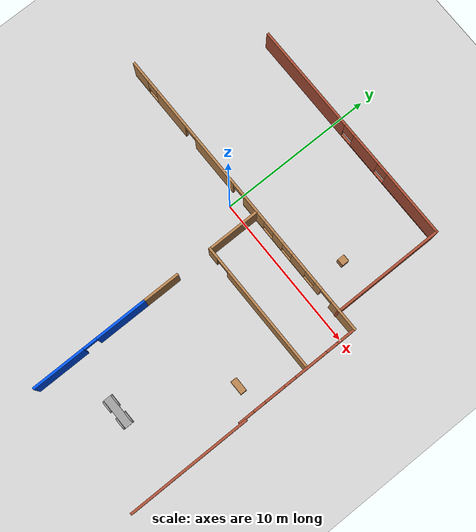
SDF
<sdf version="1.6">
 <world name="default">
  <model name="ground_plane">
   <pose>0 0 0.4 0 -0 0</pose>
   <static>1</static>
   <link name="link">
    <collision name="collision">
     <geometry><plane><normal>0 0 1</normal><size>100 100</size></plane></geometry>
     <surface>
      <contact><collide_bitmask>65535</collide_bitmask></contact>
      <friction><ode><mu>100</mu><mu2>50</mu2></ode></friction>
     </surface>
    </collision>
    <visual name="visual">
     <cast_shadows>0</cast_shadows>
     <geometry><plane><normal>0 0 1</normal><size>100 100</size></plane></geometry>
     <material>
      <script><uri>file://media/materials/scripts/gazebo.material</uri><name>Gazebo/Grey</name></script>
     </material>
    </visual>
   </link>
  </model>
  <model name="Building">
   <pose>-2.11328 -3.59888 0 0 -0 0</pose>
   <link name="Wall_19">
    <collision name="Wall_19_Collision">
     <geometry><box><size>3.5 0.15 2.5</size></box></geometry>
     <pose>0 0 1.25 0 -0 0</pose>
    </collision>
    <visual name="Wall_19_Visual">
     <pose>0 0 1.25 0 -0 0</pose>
     <geometry><box><size>3.5 0.15 2.5</size></box></geometry>
     <material>
      <script><uri>file://media/materials/scripts/gazebo.material</uri><name>Gazebo/Wood</name></script>
      <ambient>1 1 1 1</ambient>
     </material>
     <meta><layer>0</layer></meta>
    </visual>
    <pose>3.70447 2.60682 0 0 0 -1.5708</pose>
   </link>
   <link name="Wall_20">
    <pose>7.87947 0.931819 0 0 -0 0</pose>
    <visual name="Wall_20_Visual_0">
     <pose>-3.86745 0 1.25 0 -0 0</pose>
     <geometry><box><size>0.765092 0.15 2.5</size></box></geometry>
     <material>
      <script><uri>file://media/materials/scripts/gazebo.material</uri><name>Gazebo/Wood</name></script>
      <ambient>1 1 1 1</ambient>
     </material>
     <meta><layer>0</layer></meta>
    </visual>
    <collision name="Wall_20_Collision_0">
     <geometry><box><size>0.765092 0.15 2.5</size></box></geometry>
     <pose>-3.86745 0 1.25 0 -0 0</pose>
    </collision>
    <visual name="Wall_20_Visual_1">
     <pose>0.832546 0 1.25 0 -0 0</pose>
     <geometry><box><size>6.83491 0.15 2.5</size></box></geometry>
     <material>
      <script><uri>file://media/materials/scripts/gazebo.material</uri><name>Gazebo/Wood</name></script>
      <ambient>1 1 1 1</ambient>
     </material>
     <meta><layer>0</layer></meta>
    </visual>
    <collision name="Wall_20_Collision_1">
     <geometry><box><size>6.83491 0.15 2.5</size></box></geometry>
     <pose>0.832546 0 1.25 0 -0 0</pose>
    </collision>
    <visual name="Wall_20_Visual_2">
     <pose>-3.03491 0 2.25 0 -0 0</pose>
     <geometry><box><size>0.9 0.15 0.5</size></box></geometry>
     <material>
      <script><uri>file://media/materials/scripts/gazebo.material</uri><name>Gazebo/Wood</name></script>
      <ambient>1 1 1 1</ambient>
     </material>
     <meta><layer>0</layer></meta>
    </visual>
    <collision name="Wall_20_Collision_2">
     <geometry><box><size>0.9 0.15 0.5</size></box></geometry>
     <pose>-3.03491 0 2.25 0 -0 0</pose>
    </collision>
   </link>
   <link name="Wall_22">
    <collision name="Wall_22_Collision">
     <geometry><box><size>2.5 0.15 2.5</size></box></geometry>
     <pose>0 0 1.25 0 -0 0</pose>
    </collision>
    <visual name="Wall_22_Visual">
     <pose>0 0 1.25 0 -0 0</pose>
     <geometry><box><size>2.5 0.15 2.5</size></box></geometry>
     <material>
      <script><uri>file://media/materials/scripts/gazebo.material</uri><name>Gazebo/Wood</name></script>
      <ambient>1 1 1 1</ambient>
     </material>
     <meta><layer>0</layer></meta>
    </visual>
    <pose>3.68886 -2.58973 0 0 -0 1.5708</pose>
   </link>
   <link name="Wall_25">
    <pose>3.475 11.3647 0 0 -0 0</pose>
    <visual name="Wall_25_Visual_0">
     <pose>-4.00983 0 1.25 0 -0 0</pose>
     <geometry><box><size>6.98034 0.15 2.5</size></box></geometry>
     <material>
      <script><uri>file://media/materials/scripts/gazebo.material</uri><name>Gazebo/Bricks</name></script>
      <ambient>0 0.333333 1 1</ambient>
     </material>
     <meta><layer>0</layer></meta>
    </visual>
    <collision name="Wall_25_Collision_0">
     <geometry><box><size>6.98034 0.15 2.5</size></box></geometry>
     <pose>-4.00983 0 1.25 0 -0 0</pose>
    </collision>
    <visual name="Wall_25_Visual_1">
     <pose>3.49017 0 0.25 0 -0 0</pose>
     <geometry><box><size>8.01966 0.15 0.5</size></box></geometry>
     <material>
      <script><uri>file://media/materials/scripts/gazebo.material</uri><name>Gazebo/Bricks</name></script>
      <ambient>0 0.333333 1 1</ambient>
     </material>
     <meta><layer>0</layer></meta>
    </visual>
    <collision name="Wall_25_Collision_1">
     <geometry><box><size>8.01966 0.15 0.5</size></box></geometry>
     <pose>3.49017 0 0.25 0 -0 0</pose>
    </collision>
    <visual name="Wall_25_Visual_2">
     <pose>1.32873 0 1.5 0 -0 0</pose>
     <geometry><box><size>2.09676 0.15 2</size></box></geometry>
     <material>
      <script><uri>file://media/materials/scripts/gazebo.material</uri><name>Gazebo/Bricks</name></script>
      <ambient>0 0.333333 1 1</ambient>
     </material>
     <meta><layer>0</layer></meta>
    </visual>
    <collision name="Wall_25_Collision_2">
     <geometry><box><size>2.09676 0.15 2</size></box></geometry>
     <pose>1.32873 0 1.5 0 -0 0</pose>
    </collision>
    <visual name="Wall_25_Visual_3">
     <pose>5.33856 0 1.5 0 -0 0</pose>
     <geometry><box><size>4.32289 0.15 2</size></box></geometry>
     <material>
      <script><uri>file://media/materials/scripts/gazebo.material</uri><name>Gazebo/Bricks</name></script>
      <ambient>0 0.333333 1 1</ambient>
     </material>
     <meta><layer>0</layer></meta>
    </visual>
    <collision name="Wall_25_Collision_3">
     <geometry><box><size>4.32289 0.15 2</size></box></geometry>
     <pose>5.33856 0 1.5 0 -0 0</pose>
    </collision>
    <visual name="Wall_25_Visual_4">
     <pose>-0.119655 0 1.9 0 -0 0</pose>
     <geometry><box><size>0.8 0.15 1.2</size></box></geometry>
     <material>
      <script><uri>file://media/materials/scripts/gazebo.material</uri><name>Gazebo/Bricks</name></script>
      <ambient>0 0.333333 1 1</ambient>
     </material>
     <meta><layer>0</layer></meta>
    </visual>
    <collision name="Wall_25_Collision_4">
     <geometry><box><size>0.8 0.15 1.2</size></box></geometry>
     <pose>-0.119655 0 1.9 0 -0 0</pose>
    </collision>
    <visual name="Wall_25_Visual_5">
     <pose>2.77711 0 1.9 0 -0 0</pose>
     <geometry><box><size>0.8 0.15 1.2</size></box></geometry>
     <material>
      <script><uri>file://media/materials/scripts/gazebo.material</uri><name>Gazebo/Bricks</name></script>
      <ambient>0 0.333333 1 1</ambient>
     </material>
     <meta><layer>0</layer></meta>
    </visual>
    <collision name="Wall_25_Collision_5">
     <geometry><box><size>0.8 0.15 1.2</size></box></geometry>
     <pose>2.77711 0 1.9 0 -0 0</pose>
    </collision>
   </link>
   <link name="Wall_30">
    <collision name="Wall_30_Collision">
     <geometry><box><size>7.25 0.15 2.5</size></box></geometry>
     <pose>0 0 1.25 0 -0 0</pose>
    </collision>
    <visual name="Wall_30_Visual">
     <pose>0 0 1.25 0 -0 0</pose>
     <geometry><box><size>7.25 0.15 2.5</size></box></geometry>
     <material>
      <script><uri>file://media/materials/scripts/gazebo.material</uri><name>Gazebo/Bricks</name></script>
      <ambient>0 0.333333 1 1</ambient>
     </material>
     <meta><layer>0</layer></meta>
    </visual>
    <pose>10.9 7.81472 0 0 0 -1.5708</pose>
   </link>
   <link name="Wall_43">
    <collision name="Wall_43_Collision">
     <geometry><box><size>8 0.15 2.5</size></box></geometry>
     <pose>0 0 1.25 0 -0 0</pose>
    </collision>
    <visual name="Wall_43_Visual">
     <pose>0 0 1.25 0 -0 0</pose>
     <geometry><box><size>8 0.15 2.5</size></box></geometry>
     <material>
      <script><uri>file://media/materials/scripts/gazebo.material</uri><name>Gazebo/Bricks</name></script>
      <ambient>0 0.333333 1 1</ambient>
     </material>
     <meta><layer>0</layer></meta>
    </visual>
    <pose>12.3 -7.41028 0 0 -0 1.5708</pose>
   </link>
   <link name="Wall_49">
    <pose>3.68886 -7.56473 0 0 0 -1.5708</pose>
    <visual name="Wall_49_Visual_0">
     <pose>-2.18717 0 1.25 0 -0 0</pose>
     <geometry><box><size>3.37566 0.15 2.5</size></box></geometry>
     <material>
      <script><uri>file://media/materials/scripts/gazebo.material</uri><name>Gazebo/Grey</name></script>
      <ambient>0 0.333333 1 1</ambient>
     </material>
     <meta><layer>0</layer></meta>
    </visual>
    <collision name="Wall_49_Collision_0">
     <geometry><box><size>3.37566 0.15 2.5</size></box></geometry>
     <pose>-2.18717 0 1.25 0 -0 0</pose>
    </collision>
    <visual name="Wall_49_Visual_1">
     <pose>2.13783 0 1.25 0 -0 0</pose>
     <geometry><box><size>3.47434 0.15 2.5</size></box></geometry>
     <material>
      <script><uri>file://media/materials/scripts/gazebo.material</uri><name>Gazebo/Grey</name></script>
      <ambient>0 0.333333 1 1</ambient>
     </material>
     <meta><layer>0</layer></meta>
    </visual>
    <collision name="Wall_49_Collision_1">
     <geometry><box><size>3.47434 0.15 2.5</size></box></geometry>
     <pose>2.13783 0 1.25 0 -0 0</pose>
    </collision>
    <visual name="Wall_49_Visual_2">
     <pose>-0.049336 0 2.25 0 -0 0</pose>
     <geometry><box><size>0.9 0.15 0.5</size></box></geometry>
     <material>
      <script><uri>file://media/materials/scripts/gazebo.material</uri><name>Gazebo/Grey</name></script>
      <ambient>0 0.333333 1 1</ambient>
     </material>
     <meta><layer>0</layer></meta>
    </visual>
    <collision name="Wall_49_Collision_2">
     <geometry><box><size>0.9 0.15 0.5</size></box></geometry>
     <pose>-0.049336 0 2.25 0 -0 0</pose>
    </collision>
   </link>
   <link name="Wall_6">
    <pose>12.2055 0.24905 0 0 -0 1.5708</pose>
    <visual name="Wall_6_Visual_0">
     <pose>-3.60603 0 1.25 0 -0 0</pose>
     <geometry><box><size>1.03795 0.15 2.5</size></box></geometry>
     <material>
      <script><uri>file://media/materials/scripts/gazebo.material</uri><name>Gazebo/Bricks</name></script>
      <ambient>0 0.333333 1 1</ambient>
     </material>
     <meta><layer>0</layer></meta>
    </visual>
    <collision name="Wall_6_Collision_0">
     <geometry><box><size>1.03795 0.15 2.5</size></box></geometry>
     <pose>-3.60603 0 1.25 0 -0 0</pose>
    </collision>
    <visual name="Wall_6_Visual_1">
     <pose>0.518974 0 0.25 0 -0 0</pose>
     <geometry><box><size>7.21205 0.15 0.5</size></box></geometry>
     <material>
      <script><uri>file://media/materials/scripts/gazebo.material</uri><name>Gazebo/Bricks</name></script>
      <ambient>0 0.333333 1 1</ambient>
     </material>
     <meta><layer>0</layer></meta>
    </visual>
    <collision name="Wall_6_Collision_1">
     <geometry><box><size>7.21205 0.15 0.5</size></box></geometry>
     <pose>0.518974 0 0.25 0 -0 0</pose>
    </collision>
    <visual name="Wall_6_Visual_2">
     <pose>-1.61031 0 1.5 0 -0 0</pose>
     <geometry><box><size>1.35348 0.15 2</size></box></geometry>
     <material>
      <script><uri>file://media/materials/scripts/gazebo.material</uri><name>Gazebo/Bricks</name></script>
      <ambient>0 0.333333 1 1</ambient>
     </material>
     <meta><layer>0</layer></meta>
    </visual>
    <collision name="Wall_6_Collision_2">
     <geometry><box><size>1.35348 0.15 2</size></box></geometry>
     <pose>-1.61031 0 1.5 0 -0 0</pose>
    </collision>
    <visual name="Wall_6_Visual_3">
     <pose>0.958474 0 1.5 0 -0 0</pose>
     <geometry><box><size>2.1841 0.15 2</size></box></geometry>
     <material>
      <script><uri>file://media/materials/scripts/gazebo.material</uri><name>Gazebo/Bricks</name></script>
      <ambient>0 0.333333 1 1</ambient>
     </material>
     <meta><layer>0</layer></meta>
    </visual>
    <collision name="Wall_6_Collision_3">
     <geometry><box><size>2.1841 0.15 2</size></box></geometry>
     <pose>0.958474 0 1.5 0 -0 0</pose>
    </collision>
    <visual name="Wall_6_Visual_4">
     <pose>3.48776 0 1.5 0 -0 0</pose>
     <geometry><box><size>1.27448 0.15 2</size></box></geometry>
     <material>
      <script><uri>file://media/materials/scripts/gazebo.material</uri><name>Gazebo/Bricks</name></script>
      <ambient>0 0.333333 1 1</ambient>
     </material>
     <meta><layer>0</layer></meta>
    </visual>
    <collision name="Wall_6_Collision_4">
     <geometry><box><size>1.27448 0.15 2</size></box></geometry>
     <pose>3.48776 0 1.5 0 -0 0</pose>
    </collision>
    <visual name="Wall_6_Visual_5">
     <pose>-2.68705 0 1.9 0 -0 0</pose>
     <geometry><box><size>0.8 0.15 1.2</size></box></geometry>
     <material>
      <script><uri>file://media/materials/scripts/gazebo.material</uri><name>Gazebo/Bricks</name></script>
      <ambient>0 0.333333 1 1</ambient>
     </material>
     <meta><layer>0</layer></meta>
    </visual>
    <collision name="Wall_6_Collision_5">
     <geometry><box><size>0.8 0.15 1.2</size></box></geometry>
     <pose>-2.68705 0 1.9 0 -0 0</pose>
    </collision>
    <visual name="Wall_6_Visual_6">
     <pose>-0.533577 0 1.9 0 -0 0</pose>
     <geometry><box><size>0.8 0.15 1.2</size></box></geometry>
     <material>
      <script><uri>file://media/materials/scripts/gazebo.material</uri><name>Gazebo/Bricks</name></script>
      <ambient>0 0.333333 1 1</ambient>
     </material>
     <meta><layer>0</layer></meta>
    </visual>
    <collision name="Wall_6_Collision_6">
     <geometry><box><size>0.8 0.15 1.2</size></box></geometry>
     <pose>-0.533577 0 1.9 0 -0 0</pose>
    </collision>
    <visual name="Wall_6_Visual_7">
     <pose>2.45052 0 1.9 0 -0 0</pose>
     <geometry><box><size>0.8 0.15 1.2</size></box></geometry>
     <material>
      <script><uri>file://media/materials/scripts/gazebo.material</uri><name>Gazebo/Bricks</name></script>
      <ambient>0 0.333333 1 1</ambient>
     </material>
     <meta><layer>0</layer></meta>
    </visual>
    <collision name="Wall_6_Collision_7">
     <geometry><box><size>0.8 0.15 1.2</size></box></geometry>
     <pose>2.45052 0 1.9 0 -0 0</pose>
    </collision>
   </link>
   <link name="Wall_7">
    <pose>2.40547 4.29905 0 0 -0 3.14159</pose>
    <visual name="Wall_7_Visual_0">
     <pose>-8.86526 0 1.25 0 -0 0</pose>
     <geometry><box><size>2.01947 0.15 2.5</size></box></geometry>
     <material>
      <script><uri>file://media/materials/scripts/gazebo.material</uri><name>Gazebo/Wood</name></script>
      <ambient>1 1 1 1</ambient>
     </material>
     <meta><layer>0</layer></meta>
    </visual>
    <collision name="Wall_7_Collision_0">
     <geometry><box><size>2.01947 0.15 2.5</size></box></geometry>
     <pose>-8.86526 0 1.25 0 -0 0</pose>
    </collision>
    <visual name="Wall_7_Visual_1">
     <pose>-6.697 0 1.25 0 -0 0</pose>
     <geometry><box><size>0.517053 0.15 2.5</size></box></geometry>
     <material>
      <script><uri>file://media/materials/scripts/gazebo.material</uri><name>Gazebo/Wood</name></script>
      <ambient>1 1 1 1</ambient>
     </material>
     <meta><layer>0</layer></meta>
    </visual>
    <collision name="Wall_7_Collision_1">
     <geometry><box><size>0.517053 0.15 2.5</size></box></geometry>
     <pose>-6.697 0 1.25 0 -0 0</pose>
    </collision>
    <visual name="Wall_7_Visual_2">
     <pose>2.47082 0 1.25 0 -0 0</pose>
     <geometry><box><size>3.43771 0.15 2.5</size></box></geometry>
     <material>
      <script><uri>file://media/materials/scripts/gazebo.material</uri><name>Gazebo/Wood</name></script>
      <ambient>1 1 1 1</ambient>
     </material>
     <meta><layer>0</layer></meta>
    </visual>
    <collision name="Wall_7_Collision_2">
     <geometry><box><size>3.43771 0.15 2.5</size></box></geometry>
     <pose>2.47082 0 1.25 0 -0 0</pose>
    </collision>
    <visual name="Wall_7_Visual_3">
     <pose>6.40131 0 1.25 0 -0 0</pose>
     <geometry><box><size>2.62326 0.15 2.5</size></box></geometry>
     <material>
      <script><uri>file://media/materials/scripts/gazebo.material</uri><name>Gazebo/Wood</name></script>
      <ambient>1 1 1 1</ambient>
     </material>
     <meta><layer>0</layer></meta>
    </visual>
    <collision name="Wall_7_Collision_3">
     <geometry><box><size>2.62326 0.15 2.5</size></box></geometry>
     <pose>6.40131 0 1.25 0 -0 0</pose>
    </collision>
    <visual name="Wall_7_Visual_4">
     <pose>-3.29325 0 0.25 0 -0 0</pose>
     <geometry><box><size>6.29044 0.15 0.5</size></box></geometry>
     <material>
      <script><uri>file://media/materials/scripts/gazebo.material</uri><name>Gazebo/Wood</name></script>
      <ambient>1 1 1 1</ambient>
     </material>
     <meta><layer>0</layer></meta>
    </visual>
    <collision name="Wall_7_Collision_4">
     <geometry><box><size>6.29044 0.15 0.5</size></box></geometry>
     <pose>-3.29325 0 0.25 0 -0 0</pose>
    </collision>
    <visual name="Wall_7_Visual_5">
     <pose>8.79397 0 0.25 0 -0 0</pose>
     <geometry><box><size>2.16206 0.15 0.5</size></box></geometry>
     <material>
      <script><uri>file://media/materials/scripts/gazebo.material</uri><name>Gazebo/Wood</name></script>
      <ambient>1 1 1 1</ambient>
     </material>
     <meta><layer>0</layer></meta>
    </visual>
    <collision name="Wall_7_Collision_5">
     <geometry><box><size>2.16206 0.15 0.5</size></box></geometry>
     <pose>8.79397 0 0.25 0 -0 0</pose>
    </collision>
    <visual name="Wall_7_Visual_6">
     <pose>-5.03864 0 1.5 0 -0 0</pose>
     <geometry><box><size>1.19966 0.15 2</size></box></geometry>
     <material>
      <script><uri>file://media/materials/scripts/gazebo.material</uri><name>Gazebo/Wood</name></script>
      <ambient>1 1 1 1</ambient>
     </material>
     <meta><layer>0</layer></meta>
    </visual>
    <collision name="Wall_7_Collision_6">
     <geometry><box><size>1.19966 0.15 2</size></box></geometry>
     <pose>-5.03864 0 1.5 0 -0 0</pose>
    </collision>
    <visual name="Wall_7_Visual_7">
     <pose>-3.22357 0 1.5 0 -0 0</pose>
     <geometry><box><size>0.830489 0.15 2</size></box></geometry>
     <material>
      <script><uri>file://media/materials/scripts/gazebo.material</uri><name>Gazebo/Wood</name></script>
      <ambient>1 1 1 1</ambient>
     </material>
     <meta><layer>0</layer></meta>
    </visual>
    <collision name="Wall_7_Collision_7">
     <geometry><box><size>0.830489 0.15 2</size></box></geometry>
     <pose>-3.22357 0 1.5 0 -0 0</pose>
    </collision>
    <visual name="Wall_7_Visual_8">
     <pose>-1.07818 0 1.5 0 -0 0</pose>
     <geometry><box><size>1.86029 0.15 2</size></box></geometry>
     <material>
      <script><uri>file://media/materials/scripts/gazebo.material</uri><name>Gazebo/Wood</name></script>
      <ambient>1 1 1 1</ambient>
     </material>
     <meta><layer>0</layer></meta>
    </visual>
    <collision name="Wall_7_Collision_8">
     <geometry><box><size>1.86029 0.15 2</size></box></geometry>
     <pose>-1.07818 0 1.5 0 -0 0</pose>
    </collision>
    <visual name="Wall_7_Visual_9">
     <pose>-1.07818 0 1.5 0 -0 0</pose>
     <geometry><box><size>1.86029 0.15 2</size></box></geometry>
     <material>
      <script><uri>file://media/materials/scripts/gazebo.material</uri><name>Gazebo/Wood</name></script>
      <ambient>1 1 1 1</ambient>
     </material>
     <meta><layer>0</layer></meta>
    </visual>
    <collision name="Wall_7_Collision_9">
     <geometry><box><size>1.86029 0.15 2</size></box></geometry>
     <pose>-1.07818 0 1.5 0 -0 0</pose>
    </collision>
    <visual name="Wall_7_Visual_10">
     <pose>9.19397 0 1.5 0 -0 0</pose>
     <geometry><box><size>1.36206 0.15 2</size></box></geometry>
     <material>
      <script><uri>file://media/materials/scripts/gazebo.material</uri><name>Gazebo/Wood</name></script>
      <ambient>1 1 1 1</ambient>
     </material>
     <meta><layer>0</layer></meta>
    </visual>
    <collision name="Wall_7_Collision_10">
     <geometry><box><size>1.36206 0.15 2</size></box></geometry>
     <pose>9.19397 0 1.5 0 -0 0</pose>
    </collision>
    <visual name="Wall_7_Visual_11">
     <pose>-6.03847 0 1.9 0 -0 0</pose>
     <geometry><box><size>0.8 0.15 1.2</size></box></geometry>
     <material>
      <script><uri>file://media/materials/scripts/gazebo.material</uri><name>Gazebo/Wood</name></script>
      <ambient>1 1 1 1</ambient>
     </material>
     <meta><layer>0</layer></meta>
    </visual>
    <collision name="Wall_7_Collision_11">
     <geometry><box><size>0.8 0.15 1.2</size></box></geometry>
     <pose>-6.03847 0 1.9 0 -0 0</pose>
    </collision>
    <visual name="Wall_7_Visual_12">
     <pose>8.11294 0 1.9 0 -0 0</pose>
     <geometry><box><size>0.8 0.15 1.2</size></box></geometry>
     <material>
      <script><uri>file://media/materials/scripts/gazebo.material</uri><name>Gazebo/Wood</name></script>
      <ambient>1 1 1 1</ambient>
     </material>
     <meta><layer>0</layer></meta>
    </visual>
    <collision name="Wall_7_Collision_12">
     <geometry><box><size>0.8 0.15 1.2</size></box></geometry>
     <pose>8.11294 0 1.9 0 -0 0</pose>
    </collision>
    <visual name="Wall_7_Visual_13">
     <pose>-4.03882 0 1.9 0 -0 0</pose>
     <geometry><box><size>0.8 0.15 1.2</size></box></geometry>
     <material>
      <script><uri>file://media/materials/scripts/gazebo.material</uri><name>Gazebo/Wood</name></script>
      <ambient>1 1 1 1</ambient>
     </material>
     <meta><layer>0</layer></meta>
    </visual>
    <collision name="Wall_7_Collision_13">
     <geometry><box><size>0.8 0.15 1.2</size></box></geometry>
     <pose>-4.03882 0 1.9 0 -0 0</pose>
    </collision>
    <visual name="Wall_7_Visual_14">
     <pose>-2.40833 0 1.9 0 -0 0</pose>
     <geometry><box><size>0.8 0.15 1.2</size></box></geometry>
     <material>
      <script><uri>file://media/materials/scripts/gazebo.material</uri><name>Gazebo/Wood</name></script>
      <ambient>1 1 1 1</ambient>
     </material>
     <meta><layer>0</layer></meta>
    </visual>
    <collision name="Wall_7_Collision_14">
     <geometry><box><size>0.8 0.15 1.2</size></box></geometry>
     <pose>-2.40833 0 1.9 0 -0 0</pose>
    </collision>
    <visual name="Wall_7_Visual_15">
     <pose>-7.40552 0 2.25 0 -0 0</pose>
     <geometry><box><size>0.9 0.15 0.5</size></box></geometry>
     <material>
      <script><uri>file://media/materials/scripts/gazebo.material</uri><name>Gazebo/Wood</name></script>
      <ambient>1 1 1 1</ambient>
     </material>
     <meta><layer>0</layer></meta>
    </visual>
    <collision name="Wall_7_Collision_15">
     <geometry><box><size>0.9 0.15 0.5</size></box></geometry>
     <pose>-7.40552 0 2.25 0 -0 0</pose>
    </collision>
    <visual name="Wall_7_Visual_16">
     <pose>4.63968 0 2.25 0 -0 0</pose>
     <geometry><box><size>0.9 0.15 0.5</size></box></geometry>
     <material>
      <script><uri>file://media/materials/scripts/gazebo.material</uri><name>Gazebo/Wood</name></script>
      <ambient>1 1 1 1</ambient>
     </material>
     <meta><layer>0</layer></meta>
    </visual>
    <collision name="Wall_7_Collision_16">
     <geometry><box><size>0.9 0.15 0.5</size></box></geometry>
     <pose>4.63968 0 2.25 0 -0 0</pose>
    </collision>
    <visual name="Wall_7_Visual_17">
     <pose>0.301964 0 2.25 0 -0 0</pose>
     <geometry><box><size>0.9 0.15 0.5</size></box></geometry>
     <material>
      <script><uri>file://media/materials/scripts/gazebo.material</uri><name>Gazebo/Wood</name></script>
      <ambient>1 1 1 1</ambient>
     </material>
     <meta><layer>0</layer></meta>
    </visual>
    <collision name="Wall_7_Collision_17">
     <geometry><box><size>0.9 0.15 0.5</size></box></geometry>
     <pose>0.301964 0 2.25 0 -0 0</pose>
    </collision>
    <visual name="Wall_7_Visual_18">
     <pose>0.301964 0 2.25 0 -0 0</pose>
     <geometry><box><size>0.9 0.15 0.5</size></box></geometry>
     <material>
      <script><uri>file://media/materials/scripts/gazebo.material</uri><name>Gazebo/Wood</name></script>
      <ambient>1 1 1 1</ambient>
     </material>
     <meta><layer>0</layer></meta>
    </visual>
    <collision name="Wall_7_Collision_18">
     <geometry><box><size>0.9 0.15 0.5</size></box></geometry>
     <pose>0.301964 0 2.25 0 -0 0</pose>
    </collision>
   </link>
   <static>1</static>
  </model>
  <model name="RC_0">
   <link name="link_0">
    <inertial>
     <mass>1</mass>
     <inertia>
      <ixx>0.166667</ixx>
      <ixy>0</ixy>
      <ixz>0</ixz>
      <iyy>0.166667</iyy>
      <iyz>0</iyz>
      <izz>0.166667</izz>
     </inertia>
    </inertial>
    <visual name="visual">
     <geometry><box><size>2 0.5 0.2</size></box></geometry>
     <material>
      <lighting>1</lighting>
      <script><uri>file://media/materials/scripts/gazebo.material</uri><name>Gazebo/Grey</name></script>
      <shader type="pixel"><normal_map>__default__</normal_map></shader>
      <ambient>0.3 0.3 0.3 1</ambient>
      <diffuse>0.7 0.7 0.7 1</diffuse>
      <specular>0.01 0.01 0.01 1</specular>
      <emissive>0 0 0 1</emissive>
     </material>
    </visual>
    <collision name="collision">
     <geometry><box><size>2 0.5 0.2</size></box></geometry>
     <surface>
      <friction>
       <ode><mu>1</mu><mu2>1</mu2><fdir1>0 0 0</fdir1><slip1>0</slip1><slip2>0</slip2></ode>
       <torsional>
        <coefficient>1</coefficient>
        <patch_radius>0</patch_radius>
        <surface_radius>0</surface_radius>
        <use_patch_radius>1</use_patch_radius>
        <ode><slip>0</slip></ode>
       </torsional>
      </friction>
      <bounce><restitution_coefficient>0</restitution_coefficient><threshold>1e+06</threshold></bounce>
      <contact>
       <collide_without_contact>0</collide_without_contact>
       <collide_without_contact_bitmask>1</collide_without_contact_bitmask>
       <collide_bitmask>1</collide_bitmask>
       <ode>
        <soft_cfm>0</soft_cfm>
        <soft_erp>0.2</soft_erp>
        <kp>1e+13</kp>
        <kd>1</kd>
        <max_vel>0.01</max_vel>
        <min_depth>0</min_depth>
       </ode>
       <bullet>
        <split_impulse>1</split_impulse>
        <split_impulse_penetration_threshold>-0.01</split_impulse_penetration_threshold>
        <soft_cfm>0</soft_cfm>
        <soft_erp>0.2</soft_erp>
        <kp>1e+13</kp>
        <kd>1</kd>
       </bullet>
      </contact>
     </surface>
    </collision>
   </link>
   <link name="link_1">
    <pose>-0.6 -0.300039 0 1.5707 -0 0</pose>
    <inertial>
     <mass>1</mass>
     <inertia><ixx>0.145833</ixx><ixy>0</ixy><ixz>0</ixz><iyy>0.145833</iyy><iyz>0</iyz><izz>0.125</izz></inertia>
    </inertial>
    <visual name="visual">
     <geometry><cylinder><radius>0.4</radius><length>0.1</length></cylinder></geometry>
     <material>
      <lighting>1</lighting>
      <script><uri>file://media/materials/scripts/gazebo.material</uri><name>Gazebo/Grey</name></script>
      <shader type="pixel"><normal_map>__default__</normal_map></shader>
      <ambient>0.3 0.3 0.3 1</ambient>
      <diffuse>0.7 0.7 0.7 1</diffuse>
      <specular>0.01 0.01 0.01 1</specular>
      <emissive>0 0 0 1</emissive>
     </material>
    </visual>
    <collision name="collision">
     <geometry><cylinder><radius>0.4</radius><length>0.1</length></cylinder></geometry>
     <surface>
      <friction>
       <ode><mu>1</mu><mu2>1</mu2><fdir1>0 0 0</fdir1><slip1>0</slip1><slip2>0</slip2></ode>
       <torsional>
        <coefficient>1</coefficient>
        <patch_radius>0</patch_radius>
        <surface_radius>0</surface_radius>
        <use_patch_radius>1</use_patch_radius>
        <ode><slip>0</slip></ode>
       </torsional>
      </friction>
      <bounce><restitution_coefficient>0</restitution_coefficient><threshold>1e+06</threshold></bounce>
      <contact>
       <collide_without_contact>0</collide_without_contact>
       <collide_without_contact_bitmask>1</collide_without_contact_bitmask>
       <collide_bitmask>1</collide_bitmask>
       <ode>
        <soft_cfm>0</soft_cfm>
        <soft_erp>0.2</soft_erp>
        <kp>1e+13</kp>
        <kd>1</kd>
        <max_vel>0.01</max_vel>
        <min_depth>0</min_depth>
       </ode>
       <bullet>
        <split_impulse>1</split_impulse>
        <split_impulse_penetration_threshold>-0.01</split_impulse_penetration_threshold>
        <soft_cfm>0</soft_cfm>
        <soft_erp>0.2</soft_erp>
        <kp>1e+13</kp>
        <kd>1</kd>
       </bullet>
      </contact>
     </surface>
    </collision>
   </link>
   <link name="link_1_clone">
    <pose>-0.6 0.300039 0 1.5707 -0 0</pose>
    <inertial>
     <mass>1</mass>
     <inertia><ixx>0.145833</ixx><ixy>0</ixy><ixz>0</ixz><iyy>0.145833</iyy><iyz>0</iyz><izz>0.125</izz></inertia>
    </inertial>
    <visual name="visual">
     <geometry><cylinder><radius>0.4</radius><length>0.1</length></cylinder></geometry>
     <material>
      <lighting>1</lighting>
      <script><uri>file://media/materials/scripts/gazebo.material</uri><name>Gazebo/Grey</name></script>
      <shader type="pixel"><normal_map>__default__</normal_map></shader>
      <ambient>0.3 0.3 0.3 1</ambient>
      <diffuse>0.7 0.7 0.7 1</diffuse>
      <specular>0.01 0.01 0.01 1</specular>
      <emissive>0 0 0 1</emissive>
     </material>
    </visual>
    <collision name="collision">
     <geometry><cylinder><radius>0.4</radius><length>0.1</length></cylinder></geometry>
     <surface>
      <friction>
       <ode><mu>1</mu><mu2>1</mu2><fdir1>0 0 0</fdir1><slip1>0</slip1><slip2>0</slip2></ode>
       <torsional>
        <coefficient>1</coefficient>
        <patch_radius>0</patch_radius>
        <surface_radius>0</surface_radius>
        <use_patch_radius>1</use_patch_radius>
        <ode><slip>0</slip></ode>
       </torsional>
      </friction>
      <bounce><restitution_coefficient>0</restitution_coefficient><threshold>1e+06</threshold></bounce>
      <contact>
       <collide_without_contact>0</collide_without_contact>
       <collide_without_contact_bitmask>1</collide_without_contact_bitmask>
       <collide_bitmask>1</collide_bitmask>
       <ode>
        <soft_cfm>0</soft_cfm>
        <soft_erp>0.2</soft_erp>
        <kp>1e+13</kp>
        <kd>1</kd>
        <max_vel>0.01</max_vel>
        <min_depth>0</min_depth>
       </ode>
       <bullet>
        <split_impulse>1</split_impulse>
        <split_impulse_penetration_threshold>-0.01</split_impulse_penetration_threshold>
        <soft_cfm>0</soft_cfm>
        <soft_erp>0.2</soft_erp>
        <kp>1e+13</kp>
        <kd>1</kd>
       </bullet>
      </contact>
     </surface>
    </collision>
   </link>
   <link name="link_1_clone_0">
    <pose>0.6 -0.300039 0 1.5707 -0 0</pose>
    <inertial>
     <mass>1</mass>
     <inertia><ixx>0.145833</ixx><ixy>0</ixy><ixz>0</ixz><iyy>0.145833</iyy><iyz>0</iyz><izz>0.125</izz></inertia>
    </inertial>
    <visual name="visual">
     <geometry><cylinder><radius>0.4</radius><length>0.1</length></cylinder></geometry>
     <material>
      <lighting>1</lighting>
      <script><uri>file://media/materials/scripts/gazebo.material</uri><name>Gazebo/Grey</name></script>
      <shader type="pixel"><normal_map>__default__</normal_map></shader>
      <ambient>0.3 0.3 0.3 1</ambient>
      <diffuse>0.7 0.7 0.7 1</diffuse>
      <specular>0.01 0.01 0.01 1</specular>
      <emissive>0 0 0 1</emissive>
     </material>
    </visual>
    <collision name="collision">
     <geometry><cylinder><radius>0.4</radius><length>0.1</length></cylinder></geometry>
     <surface>
      <friction>
       <ode><mu>1</mu><mu2>1</mu2><fdir1>0 0 0</fdir1><slip1>0</slip1><slip2>0</slip2></ode>
       <torsional>
        <coefficient>1</coefficient>
        <patch_radius>0</patch_radius>
        <surface_radius>0</surface_radius>
        <use_patch_radius>1</use_patch_radius>
        <ode><slip>0</slip></ode>
       </torsional>
      </friction>
      <bounce><restitution_coefficient>0</restitution_coefficient><threshold>1e+06</threshold></bounce>
      <contact>
       <collide_without_contact>0</collide_without_contact>
       <collide_without_contact_bitmask>1</collide_without_contact_bitmask>
       <collide_bitmask>1</collide_bitmask>
       <ode>
        <soft_cfm>0</soft_cfm>
        <soft_erp>0.2</soft_erp>
        <kp>1e+13</kp>
        <kd>1</kd>
        <max_vel>0.01</max_vel>
        <min_depth>0</min_depth>
       </ode>
       <bullet>
        <split_impulse>1</split_impulse>
        <split_impulse_penetration_threshold>-0.01</split_impulse_penetration_threshold>
        <soft_cfm>0</soft_cfm>
        <soft_erp>0.2</soft_erp>
        <kp>1e+13</kp>
        <kd>1</kd>
       </bullet>
      </contact>
     </surface>
    </collision>
   </link>
   <link name="link_1_clone_1">
    <pose>0.6 0.300039 0 1.5707 -0 0</pose>
    <inertial>
     <mass>1</mass>
     <inertia><ixx>0.145833</ixx><ixy>0</ixy><ixz>0</ixz><iyy>0.145833</iyy><iyz>0</iyz><izz>0.125</izz></inertia>
    </inertial>
    <visual name="visual">
     <geometry><cylinder><radius>0.4</radius><length>0.1</length></cylinder></geometry>
     <material>
      <lighting>1</lighting>
      <script><uri>file://media/materials/scripts/gazebo.material</uri><name>Gazebo/Grey</name></script>
      <shader type="pixel"><normal_map>__default__</normal_map></shader>
      <ambient>0.3 0.3 0.3 1</ambient>
      <diffuse>0.7 0.7 0.7 1</diffuse>
      <specular>0.01 0.01 0.01 1</specular>
      <emissive>0 0 0 1</emissive>
     </material>
    </visual>
    <collision name="collision">
     <geometry><cylinder><radius>0.4</radius><length>0.1</length></cylinder></geometry>
     <surface>
      <friction>
       <ode><mu>1</mu><mu2>1</mu2><fdir1>0 0 0</fdir1><slip1>0</slip1><slip2>0</slip2></ode>
       <torsional>
        <coefficient>1</coefficient>
        <patch_radius>0</patch_radius>
        <surface_radius>0</surface_radius>
        <use_patch_radius>1</use_patch_radius>
        <ode><slip>0</slip></ode>
       </torsional>
      </friction>
      <bounce><restitution_coefficient>0</restitution_coefficient><threshold>1e+06</threshold></bounce>
      <contact>
       <collide_without_contact>0</collide_without_contact>
       <collide_without_contact_bitmask>1</collide_without_contact_bitmask>
       <collide_bitmask>1</collide_bitmask>
       <ode>
        <soft_cfm>0</soft_cfm>
        <soft_erp>0.2</soft_erp>
        <kp>1e+13</kp>
        <kd>1</kd>
        <max_vel>0.01</max_vel>
        <min_depth>0</min_depth>
       </ode>
       <bullet>
        <split_impulse>1</split_impulse>
        <split_impulse_penetration_threshold>-0.01</split_impulse_penetration_threshold>
        <soft_cfm>0</soft_cfm>
        <soft_erp>0.2</soft_erp>
        <kp>1e+13</kp>
        <kd>1</kd>
       </bullet>
      </contact>
     </surface>
    </collision>
   </link>
   <joint name="link_0_JOINT_6" type="revolute">
    <parent>link_0</parent>
    <child>link_1_clone_1</child>
    <axis>
     <xyz>0 0 -1</xyz>
     <use_parent_model_frame>0</use_parent_model_frame>
     <limit>
      <lower>-1.79769e+308</lower>
      <upper>1.79769e+308</upper>
      <effort>-1</effort>
      <velocity>-1</velocity>
     </limit>
     <dynamics>
      <spring_reference>0</spring_reference>
      <spring_stiffness>0</spring_stiffness>
      <damping>0</damping>
     </dynamics>
    </axis>
    <physics>
     <ode><limit><cfm>0</cfm><erp>0.2</erp></limit><suspension><cfm>0</cfm><erp>0.2</erp></suspension></ode>
    </physics>
   </joint>
   <joint name="link_0_JOINT_7" type="revolute">
    <parent>link_0</parent>
    <child>link_1_clone</child>
    <axis>
     <xyz>0 0 -1</xyz>
     <use_parent_model_frame>0</use_parent_model_frame>
     <limit>
      <lower>-1.79769e+308</lower>
      <upper>1.79769e+308</upper>
      <effort>-1</effort>
      <velocity>-1</velocity>
     </limit>
     <dynamics>
      <spring_reference>0</spring_reference>
      <spring_stiffness>0</spring_stiffness>
      <damping>0</damping>
     </dynamics>
    </axis>
    <physics>
     <ode><limit><cfm>0</cfm><erp>0.2</erp></limit><suspension><cfm>0</cfm><erp>0.2</erp></suspension></ode>
    </physics>
   </joint>
   <joint name="link_0_JOINT_8" type="revolute">
    <parent>link_0</parent>
    <child>link_1_clone_0</child>
    <axis>
     <xyz>0 0 1</xyz>
     <use_parent_model_frame>0</use_parent_model_frame>
     <limit>
      <lower>-1.79769e+308</lower>
      <upper>1.79769e+308</upper>
      <effort>-1</effort>
      <velocity>-1</velocity>
     </limit>
     <dynamics>
      <spring_reference>0</spring_reference>
      <spring_stiffness>0</spring_stiffness>
      <damping>0</damping>
     </dynamics>
    </axis>
    <physics>
     <ode><limit><cfm>0</cfm><erp>0.2</erp></limit><suspension><cfm>0</cfm><erp>0.2</erp></suspension></ode>
    </physics>
   </joint>
   <joint name="link_0_JOINT_9" type="revolute">
    <parent>link_0</parent>
    <child>link_1</child>
    <axis>
     <xyz>0 0 1</xyz>
     <use_parent_model_frame>0</use_parent_model_frame>
     <limit>
      <lower>-1.79769e+308</lower>
      <upper>1.79769e+308</upper>
      <effort>-1</effort>
      <velocity>-1</velocity>
     </limit>
     <dynamics>
      <spring_reference>0</spring_reference>
      <spring_stiffness>0</spring_stiffness>
      <damping>0</damping>
     </dynamics>
    </axis>
    <physics>
     <ode><limit><cfm>0</cfm><erp>0.2</erp></limit><suspension><cfm>0</cfm><erp>0.2</erp></suspension></ode>
    </physics>
   </joint>
   <static>0</static>
   <pose>5.29023 -12.3264 0.400005 -1e-06 0 0.001593</pose>
  </model>
  <model name="bookshelf">
   <static>1</static>
   <link name="link">
    <inertial><mass>1</mass></inertial>
    <collision name="back">
     <pose>0 0.005 0.6 0 -0 0</pose>
     <geometry><box><size>0.9 0.01 1.2</size></box></geometry>
    </collision>
    <visual name="visual1">
     <pose>0 0.005 0.6 0 -0 0</pose>
     <geometry><box><size>0.9 0.01 1.2</size></box></geometry>
     <material>
      <script><uri>file://media/materials/scripts/gazebo.material</uri><name>Gazebo/Wood</name></script>
     </material>
    </visual>
    <collision name="left_side">
     <pose>0.45 -0.195 0.6 0 -0 0</pose>
     <geometry><box><size>0.02 0.4 1.2</size></box></geometry>
    </collision>
    <visual name="visual2">
     <pose>0.45 -0.195 0.6 0 -0 0</pose>
     <geometry><box><size>0.02 0.4 1.2</size></box></geometry>
     <material>
      <script><uri>file://media/materials/scripts/gazebo.material</uri><name>Gazebo/Wood</name></script>
     </material>
    </visual>
    <collision name="right_side">
     <pose>-0.45 -0.195 0.6 0 -0 0</pose>
     <geometry><box><size>0.02 0.4 1.2</size></box></geometry>
    </collision>
    <visual name="visual3">
     <pose>-0.45 -0.195 0.6 0 -0 0</pose>
     <geometry><box><size>0.02 0.4 1.2</size></box></geometry>
     <material>
      <script><uri>file://media/materials/scripts/gazebo.material</uri><name>Gazebo/Wood</name></script>
     </material>
    </visual>
    <collision name="bottom">
     <pose>0 -0.195 0.03 0 -0 0</pose>
     <geometry><box><size>0.88 0.4 0.06</size></box></geometry>
    </collision>
    <visual name="visual4">
     <pose>0 -0.195 0.03 0 -0 0</pose>
     <geometry><box><size>0.88 0.4 0.06</size></box></geometry>
     <material>
      <script><uri>file://media/materials/scripts/gazebo.material</uri><name>Gazebo/Wood</name></script>
     </material>
    </visual>
    <collision name="top">
     <pose>0 -0.195 1.19 0 -0 0</pose>
     <geometry><box><size>0.88 0.4 0.02</size></box></geometry>
    </collision>
    <visual name="visual5">
     <pose>0 -0.195 1.19 0 -0 0</pose>
     <geometry><box><size>0.88 0.4 0.02</size></box></geometry>
     <material>
      <script><uri>file://media/materials/scripts/gazebo.material</uri><name>Gazebo/Wood</name></script>
     </material>
    </visual>
    <collision name="low_shelf">
     <pose>0 -0.195 0.43 0 -0 0</pose>
     <geometry><box><size>0.88 0.4 0.02</size></box></geometry>
    </collision>
    <visual name="visual6">
     <pose>0 -0.195 0.43 0 -0 0</pose>
     <geometry><box><size>0.88 0.4 0.02</size></box></geometry>
     <material>
      <script><uri>file://media/materials/scripts/gazebo.material</uri><name>Gazebo/Wood</name></script>
     </material>
    </visual>
    <collision name="high_shelf">
     <pose>0 -0.195 0.8 0 -0 0</pose>
     <geometry><box><size>0.88 0.4 0.02</size></box></geometry>
    </collision>
    <visual name="visual7">
     <pose>0 -0.195 0.8 0 -0 0</pose>
     <geometry><box><size>0.88 0.4 0.02</size></box></geometry>
     <material>
      <script><uri>file://media/materials/scripts/gazebo.material</uri><name>Gazebo/Wood</name></script>
     </material>
    </visual>
   </link>
   <pose>8.45382 -5.97854 0 0 -0 0</pose>
  </model>
  <model name="cabinet">
   <static>1</static>
   <link name="cabinet_bottom_plate">
    <inertial>
     <pose>0 0 -1 0 -0 0</pose>
     <inertia><ixx>2.05</ixx><ixy>0</ixy><ixz>0</ixz><iyy>2.05</iyy><iyz>0</iyz><izz>2.05</izz></inertia>
     <mass>25</mass>
    </inertial>
    <collision name="cabinet_bottom_plate_geom">
     <pose>0 0 0.01 0 -0 0</pose>
     <geometry><box><size>0.45 0.45 0.02</size></box></geometry>
    </collision>
    <visual name="cabinet_bottom_plate_geom_visual">
     <pose>0 0 0.01 0 -0 0</pose>
     <geometry><box><size>0.45 0.45 0.02</size></box></geometry>
     <material>
      <script><uri>file://media/materials/scripts/gazebo.material</uri><name>Gazebo/Wood</name></script>
     </material>
    </visual>
    <collision name="cabinet_bottom_plate_geom_cabinet_back_plate">
     <pose>0.235 0 0.51 0 -0 0</pose>
     <geometry><box><size>0.02 0.45 1.02</size></box></geometry>
    </collision>
    <visual name="cabinet_bottom_plate_geom_cabinet_back_plate_visual">
     <pose>0.235 0 0.51 0 -0 0</pose>
     <geometry><box><size>0.02 0.45 1.02</size></box></geometry>
     <material>
      <script><uri>file://media/materials/scripts/gazebo.material</uri><name>Gazebo/Wood</name></script>
     </material>
    </visual>
    <collision name="cabinet_bottom_plate_geom_cabinet_left_plate">
     <pose>0 0.235 0.51 0 -0 0</pose>
     <geometry><box><size>0.45 0.02 1.02</size></box></geometry>
    </collision>
    <visual name="cabinet_bottom_plate_geom_cabinet_left_plate_visual">
     <pose>0 0.235 0.51 0 -0 0</pose>
     <geometry><box><size>0.45 0.02 1.02</size></box></geometry>
     <material>
      <script><uri>file://media/materials/scripts/gazebo.material</uri><name>Gazebo/Wood</name></script>
     </material>
    </visual>
    <collision name="cabinet_bottom_plate_geom_cabinet_middle_plate">
     <pose>0 0 0.51 0 -0 0</pose>
     <geometry><box><size>0.45 0.45 0.02</size></box></geometry>
    </collision>
    <visual name="cabinet_bottom_plate_geom_cabinet_middle_plate_visual">
     <pose>0 0 0.51 0 -0 0</pose>
     <geometry><box><size>0.45 0.45 0.02</size></box></geometry>
     <material>
      <script><uri>file://media/materials/scripts/gazebo.material</uri><name>Gazebo/Wood</name></script>
     </material>
    </visual>
    <collision name="cabinet_bottom_plate_geom_cabinet_right_plate">
     <pose>0 -0.235 0.51 0 -0 0</pose>
     <geometry><box><size>0.45 0.02 1.02</size></box></geometry>
    </collision>
    <visual name="cabinet_bottom_plate_geom_cabinet_right_plate_visual">
     <pose>0 -0.235 0.51 0 -0 0</pose>
     <geometry><box><size>0.45 0.02 1.02</size></box></geometry>
     <material>
      <script><uri>file://media/materials/scripts/gazebo.material</uri><name>Gazebo/Wood</name></script>
     </material>
    </visual>
    <collision name="cabinet_bottom_plate_geom_cabinet_top_plate">
     <pose>0 0 1.01 0 -0 0</pose>
     <geometry><box><size>0.45 0.45 0.02</size></box></geometry>
    </collision>
    <visual name="cabinet_bottom_plate_geom_cabinet_top_plate_visual">
     <pose>0 0 1.01 0 -0 0</pose>
     <geometry><box><size>0.45 0.45 0.02</size></box></geometry>
     <material>
      <script><uri>file://media/materials/scripts/gazebo.material</uri><name>Gazebo/Wood</name></script>
     </material>
    </visual>
   </link>
   <pose>6.64126 2.93809 0 0 -0 0</pose>
  </model>
  <model name="my_ball">
   <link name="link_0">
    <inertial>
     <mass>1</mass>
     <inertia><ixx>0.1</ixx><ixy>0</ixy><ixz>0</ixz><iyy>0.1</iyy><iyz>0</iyz><izz>0.1</izz></inertia>
    </inertial>
    <visual name="visual">
     <geometry><sphere><radius>0.1</radius></sphere></geometry>
     <material>
      <lighting>1</lighting>
      <script><uri>file://media/materials/scripts/gazebo.material</uri><name>Gazebo/Grey</name></script>
      <shader type="pixel"><normal_map>__default__</normal_map></shader>
      <ambient>1 1 1 1</ambient>
      <diffuse>1 1 1 1</diffuse>
      <specular>1 1 1 1</specular>
      <emissive>1 1 1 1</emissive>
     </material>
    </visual>
    <collision name="collision">
     <geometry><sphere><radius>0.1</radius></sphere></geometry>
     <surface>
      <friction>
       <ode><mu>1</mu><mu2>1</mu2><fdir1>0 0 0</fdir1><slip1>0</slip1><slip2>0</slip2></ode>
       <torsional>
        <coefficient>1</coefficient>
        <patch_radius>0</patch_radius>
        <surface_radius>0</surface_radius>
        <use_patch_radius>1</use_patch_radius>
        <ode><slip>0</slip></ode>
       </torsional>
      </friction>
      <bounce><restitution_coefficient>0</restitution_coefficient><threshold>1e+06</threshold></bounce>
      <contact>
       <collide_without_contact>0</collide_without_contact>
       <collide_without_contact_bitmask>1</collide_without_contact_bitmask>
       <collide_bitmask>1</collide_bitmask>
       <ode>
        <soft_cfm>0</soft_cfm>
        <soft_erp>0.2</soft_erp>
        <kp>1e+13</kp>
        <kd>1</kd>
        <max_vel>0.01</max_vel>
        <min_depth>0</min_depth>
       </ode>
       <bullet>
        <split_impulse>1</split_impulse>
        <split_impulse_penetration_threshold>-0.01</split_impulse_penetration_threshold>
        <soft_cfm>0</soft_cfm>
        <soft_erp>0.2</soft_erp>
        <kp>1e+13</kp>
        <kd>1</kd>
       </bullet>
      </contact>
     </surface>
    </collision>
   </link>
   <static>0</static>
   <pose>9.65161 2.12886 0.1 0 -0 0</pose>
  </model>
 </world>
</sdf>
